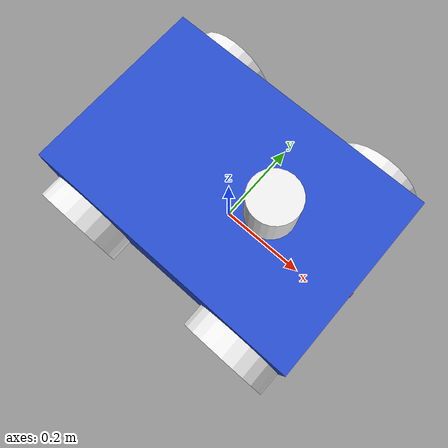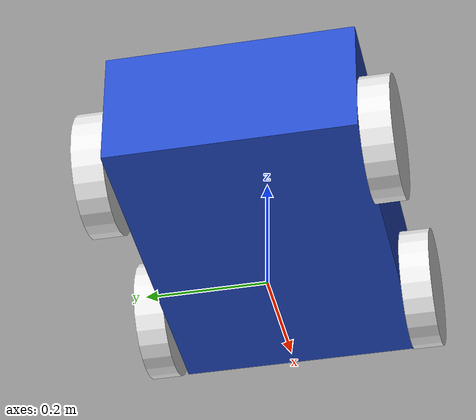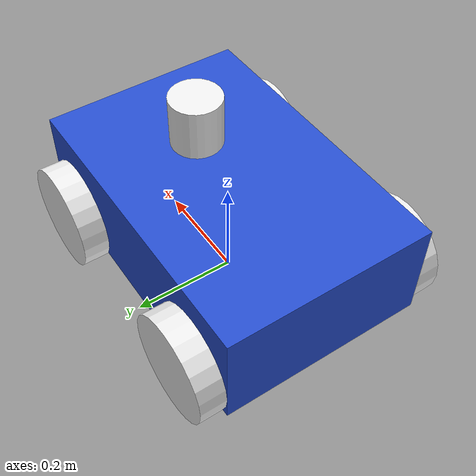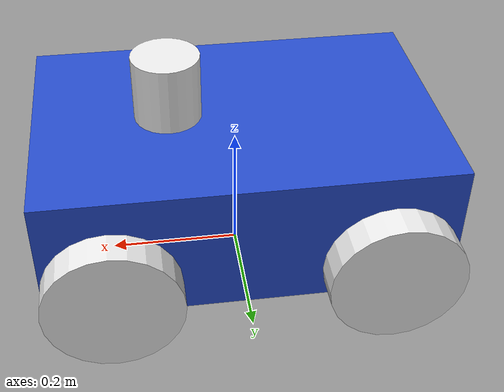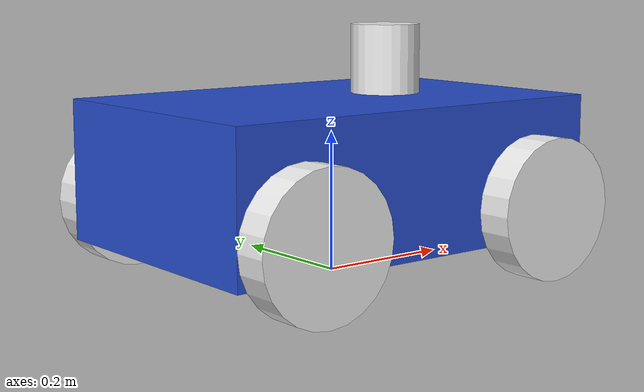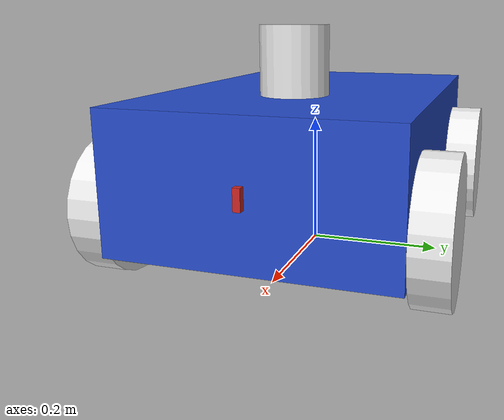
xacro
<?xml version="1.0"?>
<robot xmlns:xacro="http://www.ros.org/wiki/xacro">

    <link name="base_link">
        <visual>
            <geometry>
                <box size="0.6 0.4 0.2"/>
            </geometry>
            <material name="blue"/>
            <origin xyz="0 0 0.1" rpy="0 0 0"/>
        </visual>
        <collision>
            <geometry>
                <box size="0.6 0.4 0.2"/>
            </geometry>
            <origin xyz="0 0 0.1" rpy="0 0 0"/>
        </collision>
        <xacro:box_inertia m="5.0" l="0.6" w="0.4" h="0.2" xyz="0 0 0.1" rpy="0 0 0" />
    </link>

    <link name="camera">
        <visual>
            <geometry>
                <box size="0.02 0.01 0.03" />
            </geometry>
            <material name="red" />
            <origin xyz="0 0 0" rpy="0 0 0" />
        </visual>
        <collision>
            <geometry>
                <box size="0.02 0.01 0.03" />
            </geometry>
            <material name="red" />
            <origin xyz="0 0 0" rpy="0 0 0" />
        </collision>
        <xacro:box_inertia m="0.5" l="0.02" w="0.01" h="0.03" xyz="0.3 0.2 0.1" rpy="0 0 0" />
    </link>

    <joint name="joint_cam" type="fixed">
        <parent link="base_link" />
        <child link="camera" />
        <origin xyz="0.3 0 0.1" rpy="0 0 0" />
    </joint>

    <link name="lidar_link">
        <visual>
            <geometry>
                <cylinder radius="0.05" length="0.1" />
            </geometry>
            <material name="white" />
            <origin xyz="0.1 0 0.05" rpy="0 0 0" />
        </visual>
        <collision>
            <geometry>
                <cylinder radius="0.05" length="0.1" />
            </geometry>
            <origin xyz="0.1 0 0.05" rpy="0 0 0" />
        </collision>
        <xacro:cylinder_inertia m="0.5" r="0.05" h="0.1" xyz="0.1 0 0.05" rpy="0 0 0" />
    </link>

    <joint name="joint_1" type="fixed">
        <parent link="base_link" />
        <child link="lidar_link" />
        <origin xyz="0 0 0.2" rpy="0 0 0" />
    </joint>

    <link name="wheel_right_1">
        <visual>
            <geometry>
                <cylinder radius="0.1" length="0.05" />
            </geometry>
            <material name="white" />
            <origin xyz="0 0 0.025" rpy="0 0 0" />
        </visual>
        <collision>
            <geometry>
                <cylinder radius="0.1" length="0.05" />
            </geometry>
            <origin xyz="0 0 0.025" rpy="0 0 0" />
        </collision>
        <xacro:cylinder_inertia m="1.0" r="0.1" h="0.05" xyz="0 0 0.025" rpy="0 0 0" />
    </link>

    <joint name="joint_2" type="continuous">
        <parent link="base_link" />
        <child link="wheel_right_1" />
        <axis xyz="0 0 1" />
        <origin xyz="0.2 -0.2 0.05" rpy="1.57 0 0" />

    </joint>

    <link name="wheel_right_2">
        <visual>
            <geometry>
                <cylinder radius="0.1" length="0.05" />
            </geometry>
            <material name="white" />
            <origin xyz="0 0 0.025" rpy="0 0 0" />
        </visual>
        <collision>
            <geometry>
                <cylinder radius="0.1" length="0.05" />
            </geometry>
            <origin xyz="0 0 0.025" rpy="0 0 0" />
        </collision>
        <xacro:cylinder_inertia m="1.0" r="0.1" h="0.05" xyz="0 0 0.025" rpy="0 0 0" />
    </link>

    <joint name="joint_3" type="continuous">
        <parent link="base_link" />
        <child link="wheel_right_2" />
        <axis xyz="0 0 1" />
        <origin xyz="-0.2 -0.2 0.05" rpy="1.57 0 0" />
    </joint>

    <link name="wheel_left_1">
        <visual>
            <geometry>
                <cylinder radius="0.1" length="0.05" />
            </geometry>
            <material name="white" />
            <origin xyz="0 0 -0.025" rpy="0 0 0" />
        </visual>
        <collision>
            <geometry>
                <cylinder radius="0.1" length="0.05" />
            </geometry>
            <origin xyz="0 0 -0.025" rpy="0 0 0" />
        </collision>
        <xacro:cylinder_inertia m="1.0" r="0.1" h="0.05" xyz="0 0 -0.025" rpy="0 0 0" />
    </link>

    <joint name="joint_4" type="continuous">
        <parent link="base_link" />
        <child link="wheel_left_1" />
        <axis xyz="0 0 1" />
        <origin xyz="0.2 0.2 0.05" rpy="1.57 0 0" />

    </joint>

    <link name="wheel_left_2">
        <visual>
            <geometry>
                <cylinder radius="0.1" length="0.05" />
            </geometry>
            <material name="white" />
            <origin xyz="0 0 -0.025" rpy="0 0 0" />
        </visual>
        <collision>
            <geometry>
                <cylinder radius="0.1" length="0.05" />
            </geometry>
            <origin xyz="0 0 -0.025" rpy="0 0 0" />
        </collision>
        <xacro:cylinder_inertia m="1.0" r="0.1" h="0.05" xyz="0 0 -0.025" rpy="0 0 0" />
    </link>

    <joint name="joint_5" type="continuous">
        <parent link="base_link" />
        <child link="wheel_left_2" />
        <axis xyz="0 0 1" />
        <origin xyz="-0.2 0.2 0.05" rpy="1.57 0 0" />
    </joint>

    <link name="base_footprint" />
    <joint name="base_joint" type="fixed">
        <parent link="base_footprint" />
        <child link="base_link" />
        <origin xyz="0 0 0.05" rpy="0 0 0" />
    </joint>
</robot>
